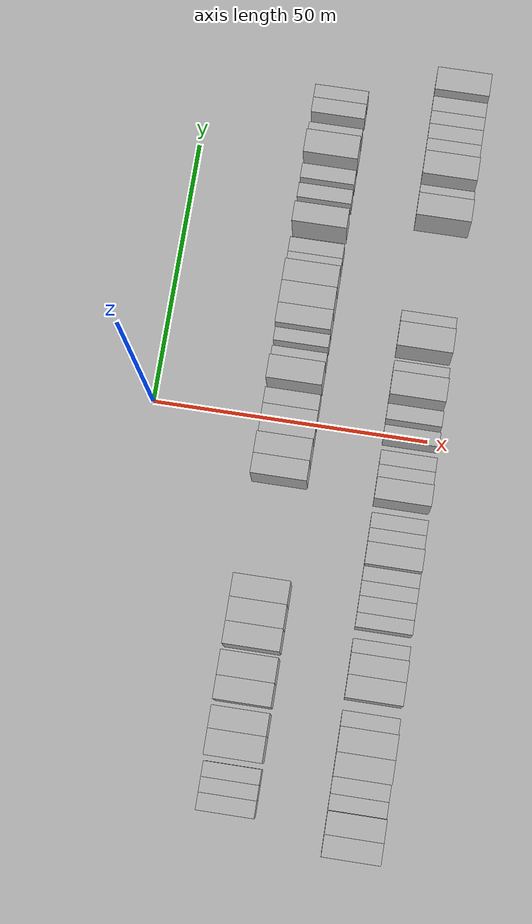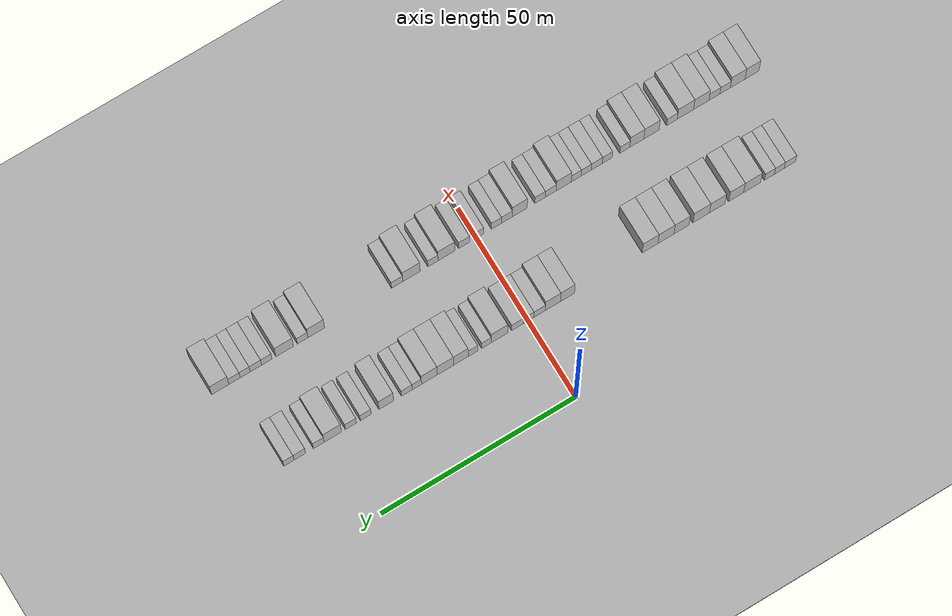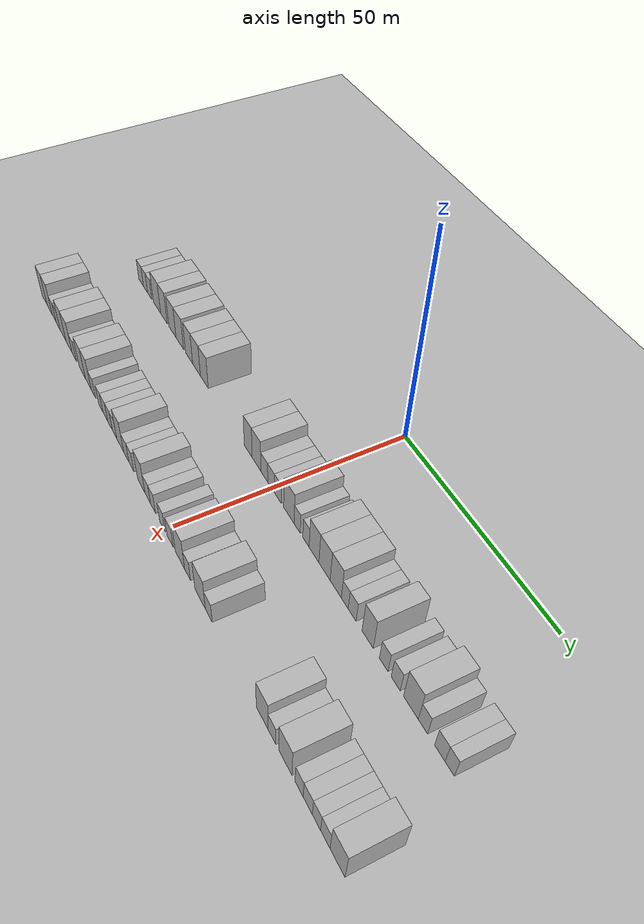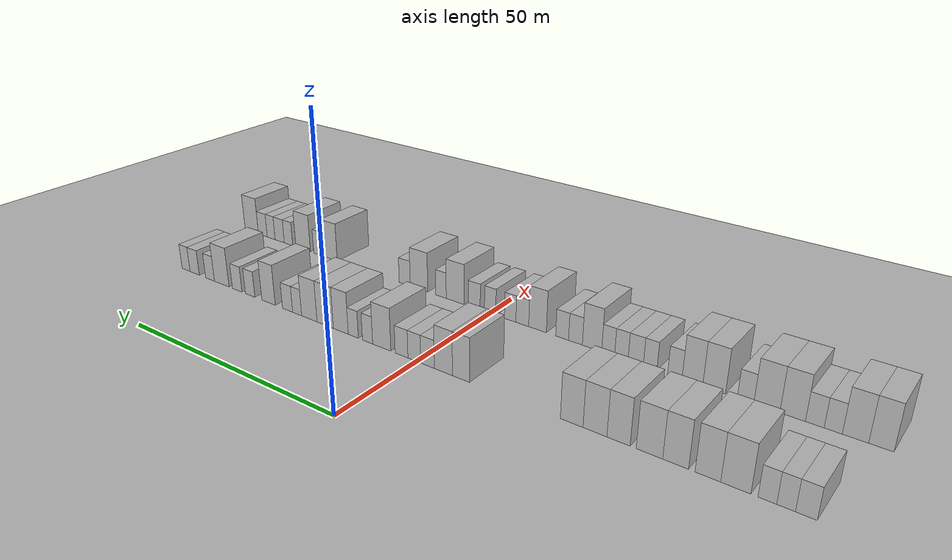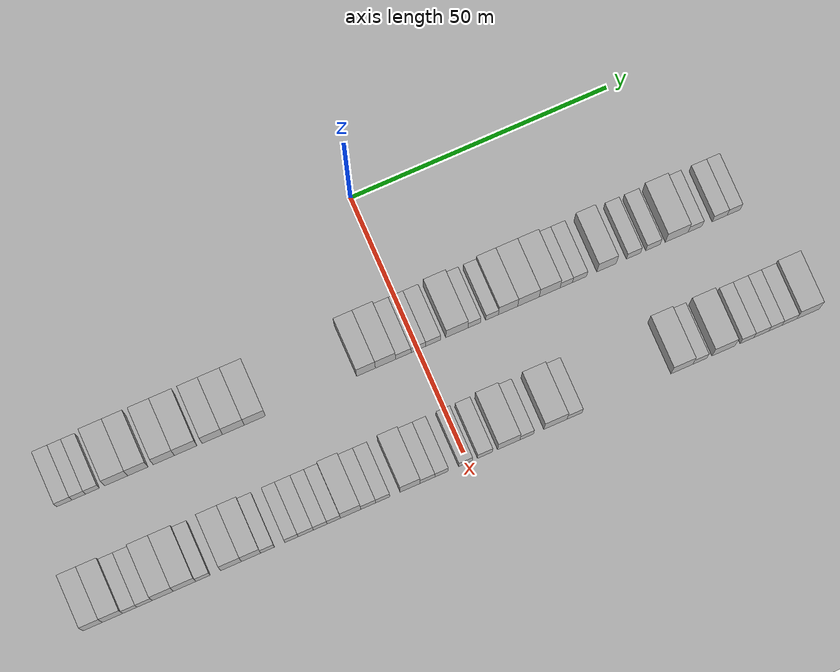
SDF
<sdf version="1.6">
 <world name="default">
  <include><name>ground_plane_1</name><uri>model://HANNAS_ground_plane</uri></include>
  <include>
   <name>ground_plane_2</name>
   <uri>model://HANNAS_ground_plane</uri>
   <pose>100 0 0  0 0 0</pose>
  </include>
  <model name="building_36">
   <static>1</static>
   <pose>25.0000 -68.1511 0 0.000000 0.000000 0.000000</pose>
   <link name="link">
    <pose>0 0 3.00 0 0 0</pose>
    <collision name="collision"><geometry><box><size>10.0000 2.9527 6.0000</size></box></geometry></collision>
    <visual name="visual">
     <cast_shadows>0</cast_shadows>
     <geometry><box><size>10.0000 2.9527 6.0000</size></box></geometry>
     <material>
      <script>
       <uri>model://HANNAS_wall/materials/scripts</uri>
       <uri>model://HANNAS_wall/materials/textures</uri>
       <name>vrc/HANNAS_wall</name>
      </script>
     </material>
    </visual>
   </link>
  </model>
  <model name="building_37">
   <static>1</static>
   <pose>25.0000 -65.3780 0 0.000000 0.000000 0.000000</pose>
   <link name="link">
    <pose>0 0 3.00 0 0 0</pose>
    <collision name="collision"><geometry><box><size>10.0000 2.5935 6.0000</size></box></geometry></collision>
    <visual name="visual">
     <cast_shadows>0</cast_shadows>
     <geometry><box><size>10.0000 2.5935 6.0000</size></box></geometry>
     <material>
      <script>
       <uri>model://HANNAS_wall/materials/scripts</uri>
       <uri>model://HANNAS_wall/materials/textures</uri>
       <name>vrc/HANNAS_wall</name>
      </script>
     </material>
    </visual>
   </link>
  </model>
  <model name="building_38">
   <static>1</static>
   <pose>25.0000 -62.7557 0 0.000000 0.000000 0.000000</pose>
   <link name="link">
    <pose>0 0 3.00 0 0 0</pose>
    <collision name="collision"><geometry><box><size>10.0000 2.6513 6.0000</size></box></geometry></collision>
    <visual name="visual">
     <cast_shadows>0</cast_shadows>
     <geometry><box><size>10.0000 2.6513 6.0000</size></box></geometry>
     <material>
      <script>
       <uri>model://HANNAS_wall/materials/scripts</uri>
       <uri>model://HANNAS_wall/materials/textures</uri>
       <name>vrc/HANNAS_wall</name>
      </script>
     </material>
    </visual>
   </link>
  </model>
  <model name="building_39">
   <static>1</static>
   <pose>25.0000 -58.2150 0 0.000000 0.000000 0.000000</pose>
   <link name="link">
    <pose>0 0 4.50 0 0 0</pose>
    <collision name="collision"><geometry><box><size>10.0000 4.4300 9.0000</size></box></geometry></collision>
    <visual name="visual">
     <cast_shadows>0</cast_shadows>
     <geometry><box><size>10.0000 4.4300 9.0000</size></box></geometry>
     <material>
      <script>
       <uri>model://HANNAS_wall/materials/scripts</uri>
       <uri>model://HANNAS_wall/materials/textures</uri>
       <name>vrc/HANNAS_wall</name>
      </script>
     </material>
    </visual>
   </link>
  </model>
  <model name="building_40">
   <static>1</static>
   <pose>25.0000 -54.0537 0 0.000000 0.000000 0.000000</pose>
   <link name="link">
    <pose>0 0 4.50 0 0 0</pose>
    <collision name="collision"><geometry><box><size>10.0000 3.8926 9.0000</size></box></geometry></collision>
    <visual name="visual">
     <cast_shadows>0</cast_shadows>
     <geometry><box><size>10.0000 3.8926 9.0000</size></box></geometry>
     <material>
      <script>
       <uri>model://HANNAS_wall/materials/scripts</uri>
       <uri>model://HANNAS_wall/materials/textures</uri>
       <name>vrc/HANNAS_wall</name>
      </script>
     </material>
    </visual>
   </link>
  </model>
  <model name="building_41">
   <static>1</static>
   <pose>25.0000 -49.0728 0 0.000000 0.000000 0.000000</pose>
   <link name="link">
    <pose>0 0 4.50 0 0 0</pose>
    <collision name="collision"><geometry><box><size>10.0000 4.0693 9.0000</size></box></geometry></collision>
    <visual name="visual">
     <cast_shadows>0</cast_shadows>
     <geometry><box><size>10.0000 4.0693 9.0000</size></box></geometry>
     <material>
      <script>
       <uri>model://HANNAS_wall/materials/scripts</uri>
       <uri>model://HANNAS_wall/materials/textures</uri>
       <name>vrc/HANNAS_wall</name>
      </script>
     </material>
    </visual>
   </link>
  </model>
  <model name="building_42">
   <static>1</static>
   <pose>25.0000 -44.8768 0 0.000000 0.000000 0.000000</pose>
   <link name="link">
    <pose>0 0 4.50 0 0 0</pose>
    <collision name="collision"><geometry><box><size>10.0000 4.3227 9.0000</size></box></geometry></collision>
    <visual name="visual">
     <cast_shadows>0</cast_shadows>
     <geometry><box><size>10.0000 4.3227 9.0000</size></box></geometry>
     <material>
      <script>
       <uri>model://HANNAS_wall/materials/scripts</uri>
       <uri>model://HANNAS_wall/materials/textures</uri>
       <name>vrc/HANNAS_wall</name>
      </script>
     </material>
    </visual>
   </link>
  </model>
  <model name="building_43">
   <static>1</static>
   <pose>25.0000 -39.7487 0 0.000000 0.000000 0.000000</pose>
   <link name="link">
    <pose>0 0 4.50 0 0 0</pose>
    <collision name="collision"><geometry><box><size>10.0000 3.9335 9.0000</size></box></geometry></collision>
    <visual name="visual">
     <cast_shadows>0</cast_shadows>
     <geometry><box><size>10.0000 3.9335 9.0000</size></box></geometry>
     <material>
      <script>
       <uri>model://HANNAS_wall/materials/scripts</uri>
       <uri>model://HANNAS_wall/materials/textures</uri>
       <name>vrc/HANNAS_wall</name>
      </script>
     </material>
    </visual>
   </link>
  </model>
  <model name="building_44">
   <static>1</static>
   <pose>25.0000 -35.6956 0 0.000000 0.000000 0.000000</pose>
   <link name="link">
    <pose>0 0 4.50 0 0 0</pose>
    <collision name="collision"><geometry><box><size>10.0000 4.1726 9.0000</size></box></geometry></collision>
    <visual name="visual">
     <cast_shadows>0</cast_shadows>
     <geometry><box><size>10.0000 4.1726 9.0000</size></box></geometry>
     <material>
      <script>
       <uri>model://HANNAS_wall/materials/scripts</uri>
       <uri>model://HANNAS_wall/materials/textures</uri>
       <name>vrc/HANNAS_wall</name>
      </script>
     </material>
    </visual>
   </link>
  </model>
  <model name="building_45">
   <static>1</static>
   <pose>25.0000 -31.5699 0 0.000000 0.000000 0.000000</pose>
   <link name="link">
    <pose>0 0 4.50 0 0 0</pose>
    <collision name="collision"><geometry><box><size>10.0000 4.0788 9.0000</size></box></geometry></collision>
    <visual name="visual">
     <cast_shadows>0</cast_shadows>
     <geometry><box><size>10.0000 4.0788 9.0000</size></box></geometry>
     <material>
      <script>
       <uri>model://HANNAS_wall/materials/scripts</uri>
       <uri>model://HANNAS_wall/materials/textures</uri>
       <name>vrc/HANNAS_wall</name>
      </script>
     </material>
    </visual>
   </link>
  </model>
  <model name="building_46">
   <static>1</static>
   <pose>25.0000 -10.1007 0 0.000000 0.000000 0.000000</pose>
   <link name="link">
    <pose>0 0 4.50 0 0 0</pose>
    <collision name="collision"><geometry><box><size>10.0000 3.6199 9.0000</size></box></geometry></collision>
    <visual name="visual">
     <cast_shadows>0</cast_shadows>
     <geometry><box><size>10.0000 3.6199 9.0000</size></box></geometry>
     <material>
      <script>
       <uri>model://HANNAS_wall/materials/scripts</uri>
       <uri>model://HANNAS_wall/materials/textures</uri>
       <name>vrc/HANNAS_wall</name>
      </script>
     </material>
    </visual>
   </link>
  </model>
  <model name="building_47">
   <static>1</static>
   <pose>25.0000 -6.3358 0 0.000000 0.000000 0.000000</pose>
   <link name="link">
    <pose>0 0 4.50 0 0 0</pose>
    <collision name="collision"><geometry><box><size>10.0000 3.9100 9.0000</size></box></geometry></collision>
    <visual name="visual">
     <cast_shadows>0</cast_shadows>
     <geometry><box><size>10.0000 3.9100 9.0000</size></box></geometry>
     <material>
      <script>
       <uri>model://HANNAS_wall/materials/scripts</uri>
       <uri>model://HANNAS_wall/materials/textures</uri>
       <name>vrc/HANNAS_wall</name>
      </script>
     </material>
    </visual>
   </link>
  </model>
  <model name="building_48">
   <static>1</static>
   <pose>25.0000 -2.8860 0 0.000000 0.000000 0.000000</pose>
   <link name="link">
    <pose>0 0 3.00 0 0 0</pose>
    <collision name="collision"><geometry><box><size>10.0000 2.9895 6.0000</size></box></geometry></collision>
    <visual name="visual">
     <cast_shadows>0</cast_shadows>
     <geometry><box><size>10.0000 2.9895 6.0000</size></box></geometry>
     <material>
      <script>
       <uri>model://HANNAS_wall/materials/scripts</uri>
       <uri>model://HANNAS_wall/materials/textures</uri>
       <name>vrc/HANNAS_wall</name>
      </script>
     </material>
    </visual>
   </link>
  </model>
  <model name="building_49">
   <static>1</static>
   <pose>25.0000 0.0297 0 0.000000 0.000000 0.000000</pose>
   <link name="link">
    <pose>0 0 3.00 0 0 0</pose>
    <collision name="collision"><geometry><box><size>10.0000 2.8418 6.0000</size></box></geometry></collision>
    <visual name="visual">
     <cast_shadows>0</cast_shadows>
     <geometry><box><size>10.0000 2.8418 6.0000</size></box></geometry>
     <material>
      <script>
       <uri>model://HANNAS_wall/materials/scripts</uri>
       <uri>model://HANNAS_wall/materials/textures</uri>
       <name>vrc/HANNAS_wall</name>
      </script>
     </material>
    </visual>
   </link>
  </model>
  <model name="building_50">
   <static>1</static>
   <pose>25.0000 2.9103 0 0.000000 0.000000 0.000000</pose>
   <link name="link">
    <pose>0 0 3.00 0 0 0</pose>
    <collision name="collision"><geometry><box><size>10.0000 2.9194 6.0000</size></box></geometry></collision>
    <visual name="visual">
     <cast_shadows>0</cast_shadows>
     <geometry><box><size>10.0000 2.9194 6.0000</size></box></geometry>
     <material>
      <script>
       <uri>model://HANNAS_wall/materials/scripts</uri>
       <uri>model://HANNAS_wall/materials/textures</uri>
       <name>vrc/HANNAS_wall</name>
      </script>
     </material>
    </visual>
   </link>
  </model>
  <model name="building_51">
   <static>1</static>
   <pose>25.0000 7.5090 0 0.000000 0.000000 0.000000</pose>
   <link name="link">
    <pose>0 0 4.50 0 0 0</pose>
    <collision name="collision"><geometry><box><size>10.0000 4.2781 9.0000</size></box></geometry></collision>
    <visual name="visual">
     <cast_shadows>0</cast_shadows>
     <geometry><box><size>10.0000 4.2781 9.0000</size></box></geometry>
     <material>
      <script>
       <uri>model://HANNAS_wall/materials/scripts</uri>
       <uri>model://HANNAS_wall/materials/textures</uri>
       <name>vrc/HANNAS_wall</name>
      </script>
     </material>
    </visual>
   </link>
  </model>
  <model name="building_52">
   <static>1</static>
   <pose>25.0000 10.8763 0 0.000000 0.000000 0.000000</pose>
   <link name="link">
    <pose>0 0 3.00 0 0 0</pose>
    <collision name="collision"><geometry><box><size>10.0000 2.4564 6.0000</size></box></geometry></collision>
    <visual name="visual">
     <cast_shadows>0</cast_shadows>
     <geometry><box><size>10.0000 2.4564 6.0000</size></box></geometry>
     <material>
      <script>
       <uri>model://HANNAS_wall/materials/scripts</uri>
       <uri>model://HANNAS_wall/materials/textures</uri>
       <name>vrc/HANNAS_wall</name>
      </script>
     </material>
    </visual>
   </link>
  </model>
  <model name="building_53">
   <static>1</static>
   <pose>25.0000 14.3415 0 0.000000 0.000000 0.000000</pose>
   <link name="link">
    <pose>0 0 3.00 0 0 0</pose>
    <collision name="collision"><geometry><box><size>10.0000 2.4740 6.0000</size></box></geometry></collision>
    <visual name="visual">
     <cast_shadows>0</cast_shadows>
     <geometry><box><size>10.0000 2.4740 6.0000</size></box></geometry>
     <material>
      <script>
       <uri>model://HANNAS_wall/materials/scripts</uri>
       <uri>model://HANNAS_wall/materials/textures</uri>
       <name>vrc/HANNAS_wall</name>
      </script>
     </material>
    </visual>
   </link>
  </model>
  <model name="building_54">
   <static>1</static>
   <pose>25.0000 17.4514 0 0.000000 0.000000 0.000000</pose>
   <link name="link">
    <pose>0 0 4.50 0 0 0</pose>
    <collision name="collision"><geometry><box><size>10.0000 3.7459 9.0000</size></box></geometry></collision>
    <visual name="visual">
     <cast_shadows>0</cast_shadows>
     <geometry><box><size>10.0000 3.7459 9.0000</size></box></geometry>
     <material>
      <script>
       <uri>model://HANNAS_wall/materials/scripts</uri>
       <uri>model://HANNAS_wall/materials/textures</uri>
       <name>vrc/HANNAS_wall</name>
      </script>
     </material>
    </visual>
   </link>
  </model>
  <model name="building_55">
   <static>1</static>
   <pose>25.0000 21.4215 0 0.000000 0.000000 0.000000</pose>
   <link name="link">
    <pose>0 0 4.50 0 0 0</pose>
    <collision name="collision"><geometry><box><size>10.0000 4.1944 9.0000</size></box></geometry></collision>
    <visual name="visual">
     <cast_shadows>0</cast_shadows>
     <geometry><box><size>10.0000 4.1944 9.0000</size></box></geometry>
     <material>
      <script>
       <uri>model://HANNAS_wall/materials/scripts</uri>
       <uri>model://HANNAS_wall/materials/textures</uri>
       <name>vrc/HANNAS_wall</name>
      </script>
     </material>
    </visual>
   </link>
  </model>
  <model name="building_56">
   <static>1</static>
   <pose>25.0000 25.5476 0 0.000000 0.000000 0.000000</pose>
   <link name="link">
    <pose>0 0 4.50 0 0 0</pose>
    <collision name="collision"><geometry><box><size>10.0000 4.0577 9.0000</size></box></geometry></collision>
    <visual name="visual">
     <cast_shadows>0</cast_shadows>
     <geometry><box><size>10.0000 4.0577 9.0000</size></box></geometry>
     <material>
      <script>
       <uri>model://HANNAS_wall/materials/scripts</uri>
       <uri>model://HANNAS_wall/materials/textures</uri>
       <name>vrc/HANNAS_wall</name>
      </script>
     </material>
    </visual>
   </link>
  </model>
  <model name="building_57">
   <static>1</static>
   <pose>25.0000 28.7807 0 0.000000 0.000000 0.000000</pose>
   <link name="link">
    <pose>0 0 3.00 0 0 0</pose>
    <collision name="collision"><geometry><box><size>10.0000 2.4084 6.0000</size></box></geometry></collision>
    <visual name="visual">
     <cast_shadows>0</cast_shadows>
     <geometry><box><size>10.0000 2.4084 6.0000</size></box></geometry>
     <material>
      <script>
       <uri>model://HANNAS_wall/materials/scripts</uri>
       <uri>model://HANNAS_wall/materials/textures</uri>
       <name>vrc/HANNAS_wall</name>
      </script>
     </material>
    </visual>
   </link>
  </model>
  <model name="building_58">
   <static>1</static>
   <pose>25.0000 31.3648 0 0.000000 0.000000 0.000000</pose>
   <link name="link">
    <pose>0 0 3.00 0 0 0</pose>
    <collision name="collision"><geometry><box><size>10.0000 2.7599 6.0000</size></box></geometry></collision>
    <visual name="visual">
     <cast_shadows>0</cast_shadows>
     <geometry><box><size>10.0000 2.7599 6.0000</size></box></geometry>
     <material>
      <script>
       <uri>model://HANNAS_wall/materials/scripts</uri>
       <uri>model://HANNAS_wall/materials/textures</uri>
       <name>vrc/HANNAS_wall</name>
      </script>
     </material>
    </visual>
   </link>
  </model>
  <model name="building_59">
   <static>1</static>
   <pose>25.0000 36.6271 0 0.000000 0.000000 0.000000</pose>
   <link name="link">
    <pose>0 0 4.50 0 0 0</pose>
    <collision name="collision"><geometry><box><size>10.0000 3.7646 9.0000</size></box></geometry></collision>
    <visual name="visual">
     <cast_shadows>0</cast_shadows>
     <geometry><box><size>10.0000 3.7646 9.0000</size></box></geometry>
     <material>
      <script>
       <uri>model://HANNAS_wall/materials/scripts</uri>
       <uri>model://HANNAS_wall/materials/textures</uri>
       <name>vrc/HANNAS_wall</name>
      </script>
     </material>
    </visual>
   </link>
  </model>
  <model name="building_60">
   <static>1</static>
   <pose>25.0000 41.8939 0 0.000000 0.000000 0.000000</pose>
   <link name="link">
    <pose>0 0 3.00 0 0 0</pose>
    <collision name="collision"><geometry><box><size>10.0000 2.7690 6.0000</size></box></geometry></collision>
    <visual name="visual">
     <cast_shadows>0</cast_shadows>
     <geometry><box><size>10.0000 2.7690 6.0000</size></box></geometry>
     <material>
      <script>
       <uri>model://HANNAS_wall/materials/scripts</uri>
       <uri>model://HANNAS_wall/materials/textures</uri>
       <name>vrc/HANNAS_wall</name>
      </script>
     </material>
    </visual>
   </link>
  </model>
  <model name="building_61">
   <static>1</static>
   <pose>25.0000 45.6931 0 0.000000 0.000000 0.000000</pose>
   <link name="link">
    <pose>0 0 3.00 0 0 0</pose>
    <collision name="collision"><geometry><box><size>10.0000 2.8296 6.0000</size></box></geometry></collision>
    <visual name="visual">
     <cast_shadows>0</cast_shadows>
     <geometry><box><size>10.0000 2.8296 6.0000</size></box></geometry>
     <material>
      <script>
       <uri>model://HANNAS_wall/materials/scripts</uri>
       <uri>model://HANNAS_wall/materials/textures</uri>
       <name>vrc/HANNAS_wall</name>
      </script>
     </material>
    </visual>
   </link>
  </model>
  <model name="building_62">
   <static>1</static>
   <pose>25.0000 50.3358 0 0.000000 0.000000 0.000000</pose>
   <link name="link">
    <pose>0 0 4.50 0 0 0</pose>
    <collision name="collision"><geometry><box><size>10.0000 4.4559 9.0000</size></box></geometry></collision>
    <visual name="visual">
     <cast_shadows>0</cast_shadows>
     <geometry><box><size>10.0000 4.4559 9.0000</size></box></geometry>
     <material>
      <script>
       <uri>model://HANNAS_wall/materials/scripts</uri>
       <uri>model://HANNAS_wall/materials/textures</uri>
       <name>vrc/HANNAS_wall</name>
      </script>
     </material>
    </visual>
   </link>
  </model>
  <model name="building_63">
   <static>1</static>
   <pose>25.0000 53.9256 0 0.000000 0.000000 0.000000</pose>
   <link name="link">
    <pose>0 0 3.00 0 0 0</pose>
    <collision name="collision"><geometry><box><size>10.0000 2.7237 6.0000</size></box></geometry></collision>
    <visual name="visual">
     <cast_shadows>0</cast_shadows>
     <geometry><box><size>10.0000 2.7237 6.0000</size></box></geometry>
     <material>
      <script>
       <uri>model://HANNAS_wall/materials/scripts</uri>
       <uri>model://HANNAS_wall/materials/textures</uri>
       <name>vrc/HANNAS_wall</name>
      </script>
     </material>
    </visual>
   </link>
  </model>
  <model name="building_64">
   <static>1</static>
   <pose>25.0000 58.7681 0 0.000000 0.000000 0.000000</pose>
   <link name="link">
    <pose>0 0 3.00 0 0 0</pose>
    <collision name="collision"><geometry><box><size>10.0000 2.9613 6.0000</size></box></geometry></collision>
    <visual name="visual">
     <cast_shadows>0</cast_shadows>
     <geometry><box><size>10.0000 2.9613 6.0000</size></box></geometry>
     <material>
      <script>
       <uri>model://HANNAS_wall/materials/scripts</uri>
       <uri>model://HANNAS_wall/materials/textures</uri>
       <name>vrc/HANNAS_wall</name>
      </script>
     </material>
    </visual>
   </link>
  </model>
  <model name="building_65">
   <static>1</static>
   <pose>25.0000 61.5337 0 0.000000 0.000000 0.000000</pose>
   <link name="link">
    <pose>0 0 3.00 0 0 0</pose>
    <collision name="collision"><geometry><box><size>10.0000 2.5700 6.0000</size></box></geometry></collision>
    <visual name="visual">
     <cast_shadows>0</cast_shadows>
     <geometry><box><size>10.0000 2.5700 6.0000</size></box></geometry>
     <material>
      <script>
       <uri>model://HANNAS_wall/materials/scripts</uri>
       <uri>model://HANNAS_wall/materials/textures</uri>
       <name>vrc/HANNAS_wall</name>
      </script>
     </material>
    </visual>
   </link>
  </model>
  <model name="building_129">
   <static>1</static>
   <pose>47.0000 -72.0022 0 0.000000 0.000000 0.000000</pose>
   <link name="link">
    <pose>0 0 4.50 0 0 0</pose>
    <collision name="collision"><geometry><box><size>10.0000 3.6623 9.0000</size></box></geometry></collision>
    <visual name="visual">
     <cast_shadows>0</cast_shadows>
     <geometry><box><size>10.0000 3.6623 9.0000</size></box></geometry>
     <material>
      <script>
       <uri>model://HANNAS_wall/materials/scripts</uri>
       <uri>model://HANNAS_wall/materials/textures</uri>
       <name>vrc/HANNAS_wall</name>
      </script>
     </material>
    </visual>
   </link>
  </model>
  <model name="building_130">
   <static>1</static>
   <pose>47.0000 -68.2267 0 0.000000 0.000000 0.000000</pose>
   <link name="link">
    <pose>0 0 4.50 0 0 0</pose>
    <collision name="collision"><geometry><box><size>10.0000 3.8888 9.0000</size></box></geometry></collision>
    <visual name="visual">
     <cast_shadows>0</cast_shadows>
     <geometry><box><size>10.0000 3.8888 9.0000</size></box></geometry>
     <material>
      <script>
       <uri>model://HANNAS_wall/materials/scripts</uri>
       <uri>model://HANNAS_wall/materials/textures</uri>
       <name>vrc/HANNAS_wall</name>
      </script>
     </material>
    </visual>
   </link>
  </model>
  <model name="building_131">
   <static>1</static>
   <pose>47.0000 -64.9093 0 0.000000 0.000000 0.000000</pose>
   <link name="link">
    <pose>0 0 3.00 0 0 0</pose>
    <collision name="collision"><geometry><box><size>10.0000 2.7459 6.0000</size></box></geometry></collision>
    <visual name="visual">
     <cast_shadows>0</cast_shadows>
     <geometry><box><size>10.0000 2.7459 6.0000</size></box></geometry>
     <material>
      <script>
       <uri>model://HANNAS_wall/materials/scripts</uri>
       <uri>model://HANNAS_wall/materials/textures</uri>
       <name>vrc/HANNAS_wall</name>
      </script>
     </material>
    </visual>
   </link>
  </model>
  <model name="building_132">
   <static>1</static>
   <pose>47.0000 -62.0876 0 0.000000 0.000000 0.000000</pose>
   <link name="link">
    <pose>0 0 3.00 0 0 0</pose>
    <collision name="collision"><geometry><box><size>10.0000 2.8974 6.0000</size></box></geometry></collision>
    <visual name="visual">
     <cast_shadows>0</cast_shadows>
     <geometry><box><size>10.0000 2.8974 6.0000</size></box></geometry>
     <material>
      <script>
       <uri>model://HANNAS_wall/materials/scripts</uri>
       <uri>model://HANNAS_wall/materials/textures</uri>
       <name>vrc/HANNAS_wall</name>
      </script>
     </material>
    </visual>
   </link>
  </model>
  <model name="building_133">
   <static>1</static>
   <pose>47.0000 -58.6100 0 0.000000 0.000000 0.000000</pose>
   <link name="link">
    <pose>0 0 4.50 0 0 0</pose>
    <collision name="collision"><geometry><box><size>10.0000 4.0579 9.0000</size></box></geometry></collision>
    <visual name="visual">
     <cast_shadows>0</cast_shadows>
     <geometry><box><size>10.0000 4.0579 9.0000</size></box></geometry>
     <material>
      <script>
       <uri>model://HANNAS_wall/materials/scripts</uri>
       <uri>model://HANNAS_wall/materials/textures</uri>
       <name>vrc/HANNAS_wall</name>
      </script>
     </material>
    </visual>
   </link>
  </model>
  <model name="building_134">
   <static>1</static>
   <pose>47.0000 -54.4496 0 0.000000 0.000000 0.000000</pose>
   <link name="link">
    <pose>0 0 4.50 0 0 0</pose>
    <collision name="collision"><geometry><box><size>10.0000 4.2629 9.0000</size></box></geometry></collision>
    <visual name="visual">
     <cast_shadows>0</cast_shadows>
     <geometry><box><size>10.0000 4.2629 9.0000</size></box></geometry>
     <material>
      <script>
       <uri>model://HANNAS_wall/materials/scripts</uri>
       <uri>model://HANNAS_wall/materials/textures</uri>
       <name>vrc/HANNAS_wall</name>
      </script>
     </material>
    </visual>
   </link>
  </model>
  <model name="building_135">
   <static>1</static>
   <pose>47.0000 -50.9359 0 0.000000 0.000000 0.000000</pose>
   <link name="link">
    <pose>0 0 3.00 0 0 0</pose>
    <collision name="collision"><geometry><box><size>10.0000 2.7646 6.0000</size></box></geometry></collision>
    <visual name="visual">
     <cast_shadows>0</cast_shadows>
     <geometry><box><size>10.0000 2.7646 6.0000</size></box></geometry>
     <material>
      <script>
       <uri>model://HANNAS_wall/materials/scripts</uri>
       <uri>model://HANNAS_wall/materials/textures</uri>
       <name>vrc/HANNAS_wall</name>
      </script>
     </material>
    </visual>
   </link>
  </model>
  <model name="building_136">
   <static>1</static>
   <pose>47.0000 -45.5665 0 0.000000 0.000000 0.000000</pose>
   <link name="link">
    <pose>0 0 4.50 0 0 0</pose>
    <collision name="collision"><geometry><box><size>10.0000 3.9741 9.0000</size></box></geometry></collision>
    <visual name="visual">
     <cast_shadows>0</cast_shadows>
     <geometry><box><size>10.0000 3.9741 9.0000</size></box></geometry>
     <material>
      <script>
       <uri>model://HANNAS_wall/materials/scripts</uri>
       <uri>model://HANNAS_wall/materials/textures</uri>
       <name>vrc/HANNAS_wall</name>
      </script>
     </material>
    </visual>
   </link>
  </model>
  <model name="building_137">
   <static>1</static>
   <pose>47.0000 -41.7358 0 0.000000 0.000000 0.000000</pose>
   <link name="link">
    <pose>0 0 4.50 0 0 0</pose>
    <collision name="collision"><geometry><box><size>10.0000 3.6873 9.0000</size></box></geometry></collision>
    <visual name="visual">
     <cast_shadows>0</cast_shadows>
     <geometry><box><size>10.0000 3.6873 9.0000</size></box></geometry>
     <material>
      <script>
       <uri>model://HANNAS_wall/materials/scripts</uri>
       <uri>model://HANNAS_wall/materials/textures</uri>
       <name>vrc/HANNAS_wall</name>
      </script>
     </material>
    </visual>
   </link>
  </model>
  <model name="building_138">
   <static>1</static>
   <pose>47.0000 -38.5753 0 0.000000 0.000000 0.000000</pose>
   <link name="link">
    <pose>0 0 3.00 0 0 0</pose>
    <collision name="collision"><geometry><box><size>10.0000 2.6337 6.0000</size></box></geometry></collision>
    <visual name="visual">
     <cast_shadows>0</cast_shadows>
     <geometry><box><size>10.0000 2.6337 6.0000</size></box></geometry>
     <material>
      <script>
       <uri>model://HANNAS_wall/materials/scripts</uri>
       <uri>model://HANNAS_wall/materials/textures</uri>
       <name>vrc/HANNAS_wall</name>
      </script>
     </material>
    </visual>
   </link>
  </model>
  <model name="building_139">
   <static>1</static>
   <pose>47.0000 -33.9891 0 0.000000 0.000000 0.000000</pose>
   <link name="link">
    <pose>0 0 3.00 0 0 0</pose>
    <collision name="collision"><geometry><box><size>10.0000 2.5389 6.0000</size></box></geometry></collision>
    <visual name="visual">
     <cast_shadows>0</cast_shadows>
     <geometry><box><size>10.0000 2.5389 6.0000</size></box></geometry>
     <material>
      <script>
       <uri>model://HANNAS_wall/materials/scripts</uri>
       <uri>model://HANNAS_wall/materials/textures</uri>
       <name>vrc/HANNAS_wall</name>
      </script>
     </material>
    </visual>
   </link>
  </model>
  <model name="building_140">
   <static>1</static>
   <pose>47.0000 -31.2521 0 0.000000 0.000000 0.000000</pose>
   <link name="link">
    <pose>0 0 3.00 0 0 0</pose>
    <collision name="collision"><geometry><box><size>10.0000 2.9350 6.0000</size></box></geometry></collision>
    <visual name="visual">
     <cast_shadows>0</cast_shadows>
     <geometry><box><size>10.0000 2.9350 6.0000</size></box></geometry>
     <material>
      <script>
       <uri>model://HANNAS_wall/materials/scripts</uri>
       <uri>model://HANNAS_wall/materials/textures</uri>
       <name>vrc/HANNAS_wall</name>
      </script>
     </material>
    </visual>
   </link>
  </model>
  <model name="building_141">
   <static>1</static>
   <pose>47.0000 -28.4707 0 0.000000 0.000000 0.000000</pose>
   <link name="link">
    <pose>0 0 3.00 0 0 0</pose>
    <collision name="collision"><geometry><box><size>10.0000 2.6278 6.0000</size></box></geometry></collision>
    <visual name="visual">
     <cast_shadows>0</cast_shadows>
     <geometry><box><size>10.0000 2.6278 6.0000</size></box></geometry>
     <material>
      <script>
       <uri>model://HANNAS_wall/materials/scripts</uri>
       <uri>model://HANNAS_wall/materials/textures</uri>
       <name>vrc/HANNAS_wall</name>
      </script>
     </material>
    </visual>
   </link>
  </model>
  <model name="building_142">
   <static>1</static>
   <pose>47.0000 -25.8783 0 0.000000 0.000000 0.000000</pose>
   <link name="link">
    <pose>0 0 3.00 0 0 0</pose>
    <collision name="collision"><geometry><box><size>10.0000 2.5570 6.0000</size></box></geometry></collision>
    <visual name="visual">
     <cast_shadows>0</cast_shadows>
     <geometry><box><size>10.0000 2.5570 6.0000</size></box></geometry>
     <material>
      <script>
       <uri>model://HANNAS_wall/materials/scripts</uri>
       <uri>model://HANNAS_wall/materials/textures</uri>
       <name>vrc/HANNAS_wall</name>
      </script>
     </material>
    </visual>
   </link>
  </model>
  <model name="building_143">
   <static>1</static>
   <pose>47.0000 -22.6434 0 0.000000 0.000000 0.000000</pose>
   <link name="link">
    <pose>0 0 4.50 0 0 0</pose>
    <collision name="collision"><geometry><box><size>10.0000 3.9128 9.0000</size></box></geometry></collision>
    <visual name="visual">
     <cast_shadows>0</cast_shadows>
     <geometry><box><size>10.0000 3.9128 9.0000</size></box></geometry>
     <material>
      <script>
       <uri>model://HANNAS_wall/materials/scripts</uri>
       <uri>model://HANNAS_wall/materials/textures</uri>
       <name>vrc/HANNAS_wall</name>
      </script>
     </material>
    </visual>
   </link>
  </model>
  <model name="building_144">
   <static>1</static>
   <pose>47.0000 -19.2523 0 0.000000 0.000000 0.000000</pose>
   <link name="link">
    <pose>0 0 3.00 0 0 0</pose>
    <collision name="collision"><geometry><box><size>10.0000 2.8694 6.0000</size></box></geometry></collision>
    <visual name="visual">
     <cast_shadows>0</cast_shadows>
     <geometry><box><size>10.0000 2.8694 6.0000</size></box></geometry>
     <material>
      <script>
       <uri>model://HANNAS_wall/materials/scripts</uri>
       <uri>model://HANNAS_wall/materials/textures</uri>
       <name>vrc/HANNAS_wall</name>
      </script>
     </material>
    </visual>
   </link>
  </model>
  <model name="building_145">
   <static>1</static>
   <pose>47.0000 -16.4642 0 0.000000 0.000000 0.000000</pose>
   <link name="link">
    <pose>0 0 3.00 0 0 0</pose>
    <collision name="collision"><geometry><box><size>10.0000 2.7067 6.0000</size></box></geometry></collision>
    <visual name="visual">
     <cast_shadows>0</cast_shadows>
     <geometry><box><size>10.0000 2.7067 6.0000</size></box></geometry>
     <material>
      <script>
       <uri>model://HANNAS_wall/materials/scripts</uri>
       <uri>model://HANNAS_wall/materials/textures</uri>
       <name>vrc/HANNAS_wall</name>
      </script>
     </material>
    </visual>
   </link>
  </model>
  <model name="building_146">
   <static>1</static>
   <pose>47.0000 -11.1898 0 0.000000 0.000000 0.000000</pose>
   <link name="link">
    <pose>0 0 4.50 0 0 0</pose>
    <collision name="collision"><geometry><box><size>10.0000 3.8422 9.0000</size></box></geometry></collision>
    <visual name="visual">
     <cast_shadows>0</cast_shadows>
     <geometry><box><size>10.0000 3.8422 9.0000</size></box></geometry>
     <material>
      <script>
       <uri>model://HANNAS_wall/materials/scripts</uri>
       <uri>model://HANNAS_wall/materials/textures</uri>
       <name>vrc/HANNAS_wall</name>
      </script>
     </material>
    </visual>
   </link>
  </model>
  <model name="building_147">
   <static>1</static>
   <pose>47.0000 -7.8434 0 0.000000 0.000000 0.000000</pose>
   <link name="link">
    <pose>0 0 3.00 0 0 0</pose>
    <collision name="collision"><geometry><box><size>10.0000 2.8505 6.0000</size></box></geometry></collision>
    <visual name="visual">
     <cast_shadows>0</cast_shadows>
     <geometry><box><size>10.0000 2.8505 6.0000</size></box></geometry>
     <material>
      <script>
       <uri>model://HANNAS_wall/materials/scripts</uri>
       <uri>model://HANNAS_wall/materials/textures</uri>
       <name>vrc/HANNAS_wall</name>
      </script>
     </material>
    </visual>
   </link>
  </model>
  <model name="building_148">
   <static>1</static>
   <pose>47.0000 -5.1268 0 0.000000 0.000000 0.000000</pose>
   <link name="link">
    <pose>0 0 3.00 0 0 0</pose>
    <collision name="collision"><geometry><box><size>10.0000 2.5826 6.0000</size></box></geometry></collision>
    <visual name="visual">
     <cast_shadows>0</cast_shadows>
     <geometry><box><size>10.0000 2.5826 6.0000</size></box></geometry>
     <material>
      <script>
       <uri>model://HANNAS_wall/materials/scripts</uri>
       <uri>model://HANNAS_wall/materials/textures</uri>
       <name>vrc/HANNAS_wall</name>
      </script>
     </material>
    </visual>
   </link>
  </model>
  <model name="building_149">
   <static>1</static>
   <pose>47.0000 -0.5141 0 0.000000 0.000000 0.000000</pose>
   <link name="link">
    <pose>0 0 3.00 0 0 0</pose>
    <collision name="collision"><geometry><box><size>10.0000 2.6429 6.0000</size></box></geometry></collision>
    <visual name="visual">
     <cast_shadows>0</cast_shadows>
     <geometry><box><size>10.0000 2.6429 6.0000</size></box></geometry>
     <material>
      <script>
       <uri>model://HANNAS_wall/materials/scripts</uri>
       <uri>model://HANNAS_wall/materials/textures</uri>
       <name>vrc/HANNAS_wall</name>
      </script>
     </material>
    </visual>
   </link>
  </model>
  <model name="building_150">
   <static>1</static>
   <pose>47.0000 3.2470 0 0.000000 0.000000 0.000000</pose>
   <link name="link">
    <pose>0 0 3.00 0 0 0</pose>
    <collision name="collision"><geometry><box><size>10.0000 2.8794 6.0000</size></box></geometry></collision>
    <visual name="visual">
     <cast_shadows>0</cast_shadows>
     <geometry><box><size>10.0000 2.8794 6.0000</size></box></geometry>
     <material>
      <script>
       <uri>model://HANNAS_wall/materials/scripts</uri>
       <uri>model://HANNAS_wall/materials/textures</uri>
       <name>vrc/HANNAS_wall</name>
      </script>
     </material>
    </visual>
   </link>
  </model>
  <model name="building_151">
   <static>1</static>
   <pose>47.0000 7.8479 0 0.000000 0.000000 0.000000</pose>
   <link name="link">
    <pose>0 0 4.50 0 0 0</pose>
    <collision name="collision"><geometry><box><size>10.0000 4.3224 9.0000</size></box></geometry></collision>
    <visual name="visual">
     <cast_shadows>0</cast_shadows>
     <geometry><box><size>10.0000 4.3224 9.0000</size></box></geometry>
     <material>
      <script>
       <uri>model://HANNAS_wall/materials/scripts</uri>
       <uri>model://HANNAS_wall/materials/textures</uri>
       <name>vrc/HANNAS_wall</name>
      </script>
     </material>
    </visual>
   </link>
  </model>
  <model name="building_152">
   <static>1</static>
   <pose>47.0000 11.3276 0 0.000000 0.000000 0.000000</pose>
   <link name="link">
    <pose>0 0 3.00 0 0 0</pose>
    <collision name="collision"><geometry><box><size>10.0000 2.6370 6.0000</size></box></geometry></collision>
    <visual name="visual">
     <cast_shadows>0</cast_shadows>
     <geometry><box><size>10.0000 2.6370 6.0000</size></box></geometry>
     <material>
      <script>
       <uri>model://HANNAS_wall/materials/scripts</uri>
       <uri>model://HANNAS_wall/materials/textures</uri>
       <name>vrc/HANNAS_wall</name>
      </script>
     </material>
    </visual>
   </link>
  </model>
  <model name="building_153">
   <static>1</static>
   <pose>47.0000 16.8913 0 0.000000 0.000000 0.000000</pose>
   <link name="link">
    <pose>0 0 4.50 0 0 0</pose>
    <collision name="collision"><geometry><box><size>10.0000 4.4905 9.0000</size></box></geometry></collision>
    <visual name="visual">
     <cast_shadows>0</cast_shadows>
     <geometry><box><size>10.0000 4.4905 9.0000</size></box></geometry>
     <material>
      <script>
       <uri>model://HANNAS_wall/materials/scripts</uri>
       <uri>model://HANNAS_wall/materials/textures</uri>
       <name>vrc/HANNAS_wall</name>
      </script>
     </material>
    </visual>
   </link>
  </model>
  <model name="building_154">
   <static>1</static>
   <pose>47.0000 20.5919 0 0.000000 0.000000 0.000000</pose>
   <link name="link">
    <pose>0 0 3.00 0 0 0</pose>
    <collision name="collision"><geometry><box><size>10.0000 2.9106 6.0000</size></box></geometry></collision>
    <visual name="visual">
     <cast_shadows>0</cast_shadows>
     <geometry><box><size>10.0000 2.9106 6.0000</size></box></geometry>
     <material>
      <script>
       <uri>model://HANNAS_wall/materials/scripts</uri>
       <uri>model://HANNAS_wall/materials/textures</uri>
       <name>vrc/HANNAS_wall</name>
      </script>
     </material>
    </visual>
   </link>
  </model>
  <model name="building_155">
   <static>1</static>
   <pose>47.0000 41.4331 0 0.000000 0.000000 0.000000</pose>
   <link name="link">
    <pose>0 0 4.50 0 0 0</pose>
    <collision name="collision"><geometry><box><size>10.0000 4.2573 9.0000</size></box></geometry></collision>
    <visual name="visual">
     <cast_shadows>0</cast_shadows>
     <geometry><box><size>10.0000 4.2573 9.0000</size></box></geometry>
     <material>
      <script>
       <uri>model://HANNAS_wall/materials/scripts</uri>
       <uri>model://HANNAS_wall/materials/textures</uri>
       <name>vrc/HANNAS_wall</name>
      </script>
     </material>
    </visual>
   </link>
  </model>
  <model name="building_156">
   <static>1</static>
   <pose>47.0000 44.9267 0 0.000000 0.000000 0.000000</pose>
   <link name="link">
    <pose>0 0 3.00 0 0 0</pose>
    <collision name="collision"><geometry><box><size>10.0000 2.7297 6.0000</size></box></geometry></collision>
    <visual name="visual">
     <cast_shadows>0</cast_shadows>
     <geometry><box><size>10.0000 2.7297 6.0000</size></box></geometry>
     <material>
      <script>
       <uri>model://HANNAS_wall/materials/scripts</uri>
       <uri>model://HANNAS_wall/materials/textures</uri>
       <name>vrc/HANNAS_wall</name>
      </script>
     </material>
    </visual>
   </link>
  </model>
  <model name="building_157">
   <static>1</static>
   <pose>47.0000 49.5311 0 0.000000 0.000000 0.000000</pose>
   <link name="link">
    <pose>0 0 4.50 0 0 0</pose>
    <collision name="collision"><geometry><box><size>10.0000 4.4792 9.0000</size></box></geometry></collision>
    <visual name="visual">
     <cast_shadows>0</cast_shadows>
     <geometry><box><size>10.0000 4.4792 9.0000</size></box></geometry>
     <material>
      <script>
       <uri>model://HANNAS_wall/materials/scripts</uri>
       <uri>model://HANNAS_wall/materials/textures</uri>
       <name>vrc/HANNAS_wall</name>
      </script>
     </material>
    </visual>
   </link>
  </model>
  <model name="building_158">
   <static>1</static>
   <pose>47.0000 54.1007 0 0.000000 0.000000 0.000000</pose>
   <link name="link">
    <pose>0 0 3.00 0 0 0</pose>
    <collision name="collision"><geometry><box><size>10.0000 2.6601 6.0000</size></box></geometry></collision>
    <visual name="visual">
     <cast_shadows>0</cast_shadows>
     <geometry><box><size>10.0000 2.6601 6.0000</size></box></geometry>
     <material>
      <script>
       <uri>model://HANNAS_wall/materials/scripts</uri>
       <uri>model://HANNAS_wall/materials/textures</uri>
       <name>vrc/HANNAS_wall</name>
      </script>
     </material>
    </visual>
   </link>
  </model>
  <model name="building_159">
   <static>1</static>
   <pose>47.0000 56.8905 0 0.000000 0.000000 0.000000</pose>
   <link name="link">
    <pose>0 0 3.00 0 0 0</pose>
    <collision name="collision"><geometry><box><size>10.0000 2.9194 6.0000</size></box></geometry></collision>
    <visual name="visual">
     <cast_shadows>0</cast_shadows>
     <geometry><box><size>10.0000 2.9194 6.0000</size></box></geometry>
     <material>
      <script>
       <uri>model://HANNAS_wall/materials/scripts</uri>
       <uri>model://HANNAS_wall/materials/textures</uri>
       <name>vrc/HANNAS_wall</name>
      </script>
     </material>
    </visual>
   </link>
  </model>
  <model name="building_160">
   <static>1</static>
   <pose>47.0000 59.6333 0 0.000000 0.000000 0.000000</pose>
   <link name="link">
    <pose>0 0 3.00 0 0 0</pose>
    <collision name="collision"><geometry><box><size>10.0000 2.5661 6.0000</size></box></geometry></collision>
    <visual name="visual">
     <cast_shadows>0</cast_shadows>
     <geometry><box><size>10.0000 2.5661 6.0000</size></box></geometry>
     <material>
      <script>
       <uri>model://HANNAS_wall/materials/scripts</uri>
       <uri>model://HANNAS_wall/materials/textures</uri>
       <name>vrc/HANNAS_wall</name>
      </script>
     </material>
    </visual>
   </link>
  </model>
  <model name="building_161">
   <static>1</static>
   <pose>47.0000 62.3570 0 0.000000 0.000000 0.000000</pose>
   <link name="link">
    <pose>0 0 3.00 0 0 0</pose>
    <collision name="collision"><geometry><box><size>10.0000 2.8812 6.0000</size></box></geometry></collision>
    <visual name="visual">
     <cast_shadows>0</cast_shadows>
     <geometry><box><size>10.0000 2.8812 6.0000</size></box></geometry>
     <material>
      <script>
       <uri>model://HANNAS_wall/materials/scripts</uri>
       <uri>model://HANNAS_wall/materials/textures</uri>
       <name>vrc/HANNAS_wall</name>
      </script>
     </material>
    </visual>
   </link>
  </model>
  <model name="building_162">
   <static>1</static>
   <pose>47.0000 66.0078 0 0.000000 0.000000 0.000000</pose>
   <link name="link">
    <pose>0 0 4.50 0 0 0</pose>
    <collision name="collision"><geometry><box><size>10.0000 4.4205 9.0000</size></box></geometry></collision>
    <visual name="visual">
     <cast_shadows>0</cast_shadows>
     <geometry><box><size>10.0000 4.4205 9.0000</size></box></geometry>
     <material>
      <script>
       <uri>model://HANNAS_wall/materials/scripts</uri>
       <uri>model://HANNAS_wall/materials/textures</uri>
       <name>vrc/HANNAS_wall</name>
      </script>
     </material>
    </visual>
   </link>
  </model>
 </world>
</sdf>
